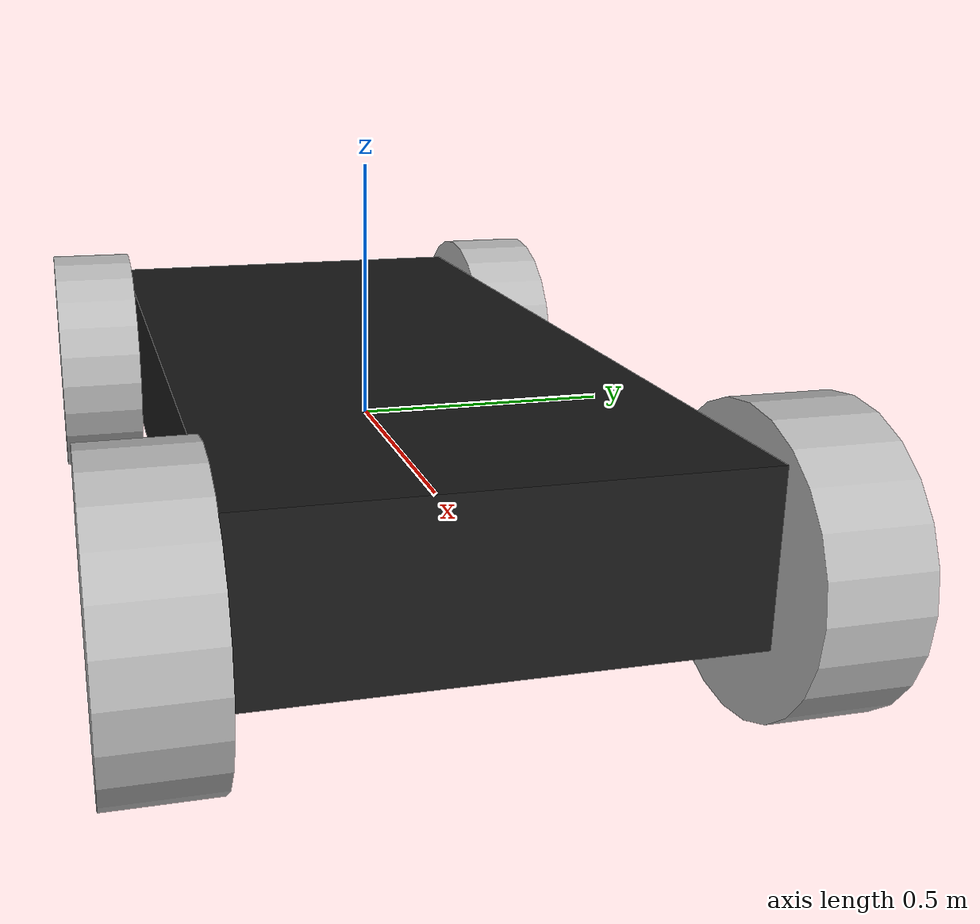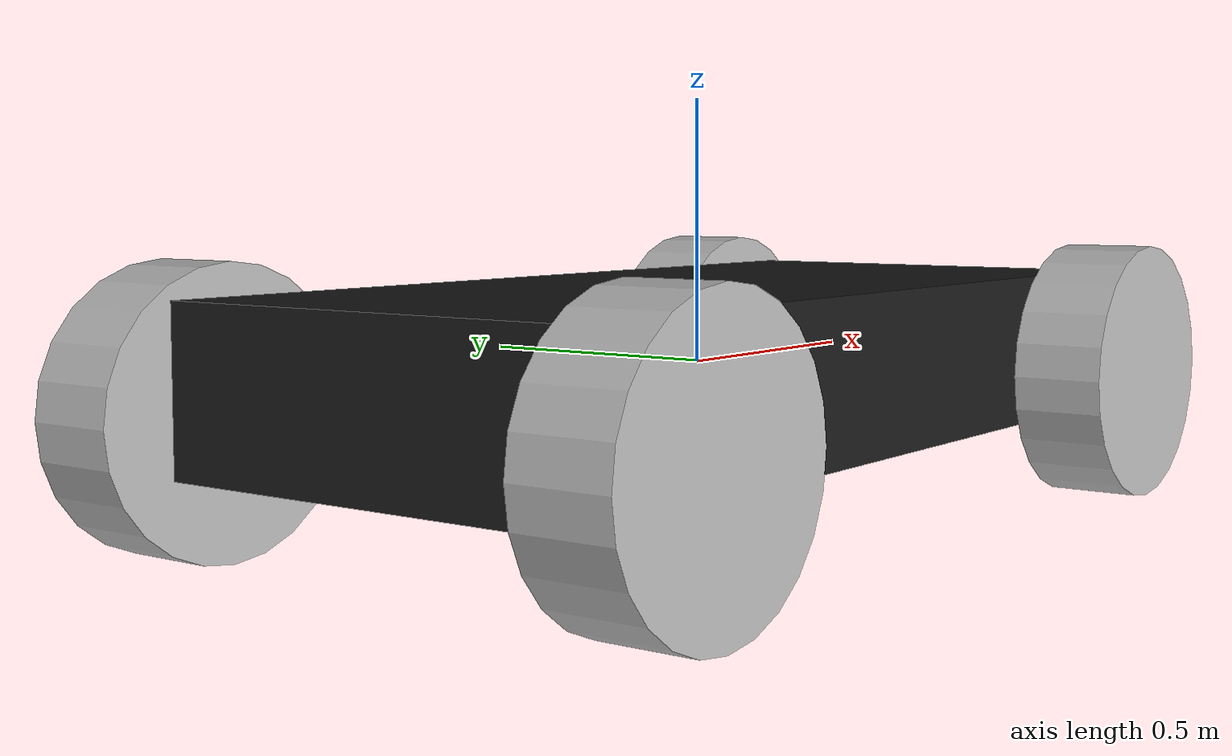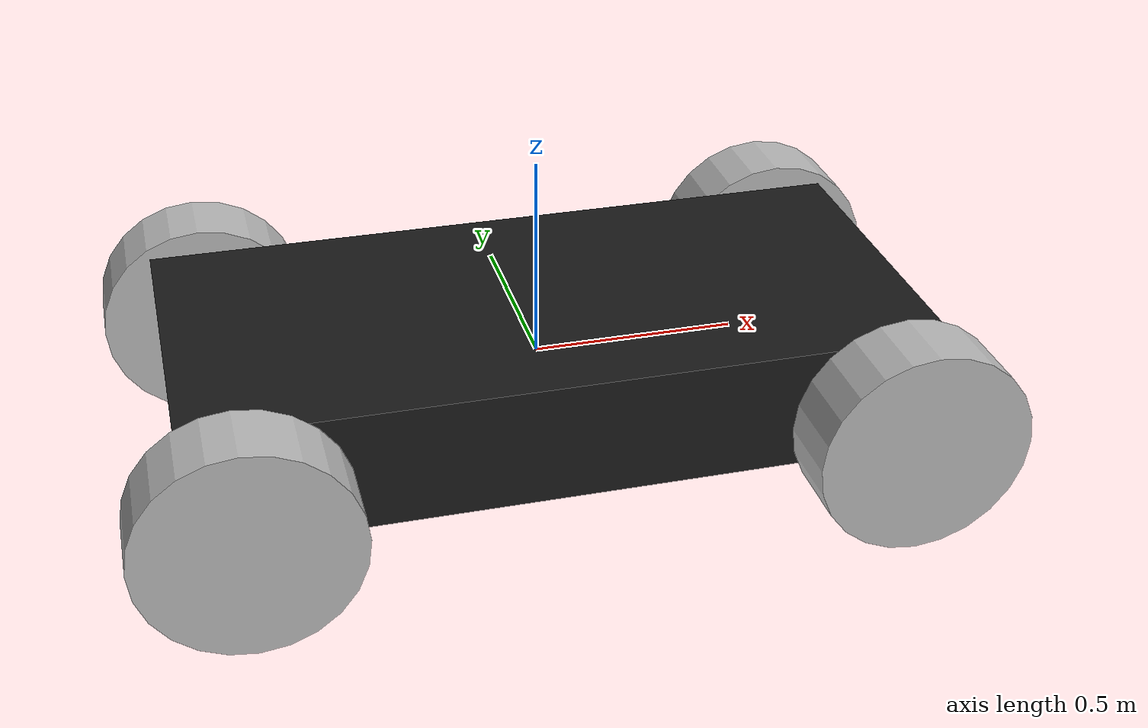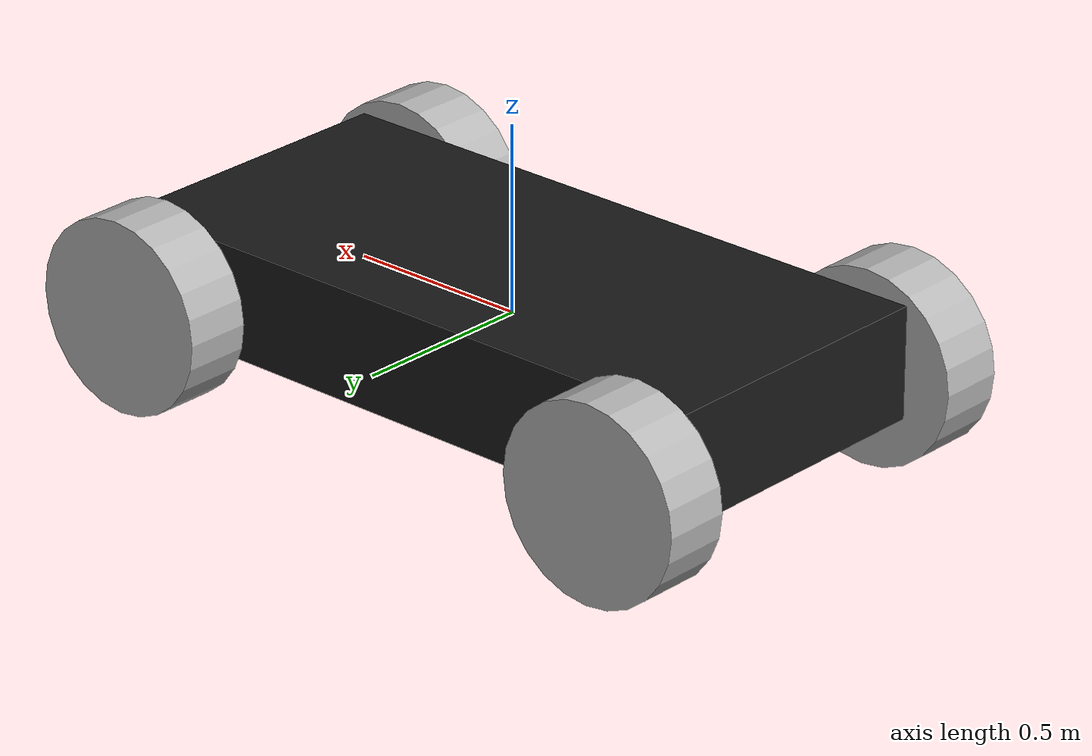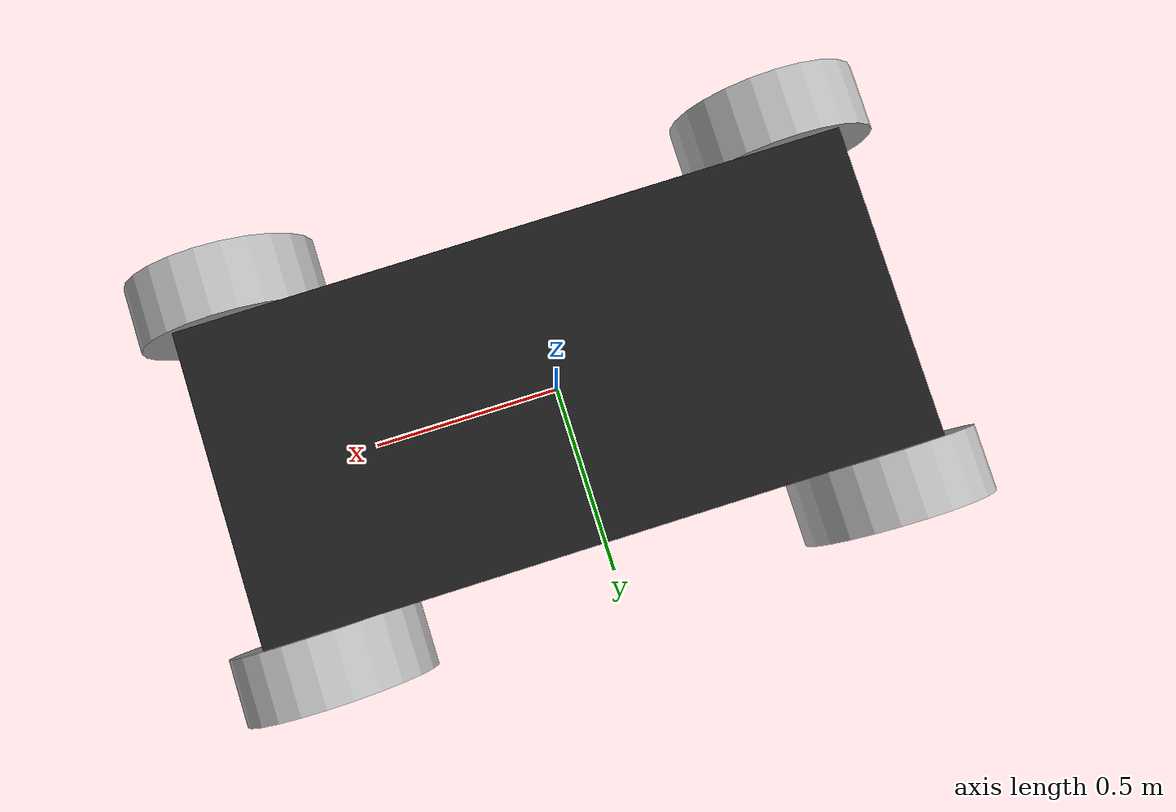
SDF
<?xml version="1.0" ?>
<sdf version="1.10">
  <model name="fsd_car">

    <link name="chassis">
      <inertial>
        <mass>230</mass>           <!-- kg, total vehicle mass (placeholder, FS-typical) -->
        <inertia>
          <ixx>6.52</ixx>          <!-- kg·m², roll -->
          <iyy>63.8</iyy>          <!-- kg·m², pitch -->
          <izz>66.9</izz>          <!-- kg·m², yaw -->
          <ixy>0</ixy>
          <ixz>0</ixz>
          <iyz>0</iyz>
        </inertia>
      </inertial>
      <visual name="chassis_visual">
        <!-- TODO: replace box with a proper mesh once CAD is available -->
        <geometry>
          <box><size>1.8 0.84 0.3</size></box>  <!-- length width height, meters -->
        </geometry>
        <material>
          <ambient>0.1 0.1 0.1 1</ambient>
          <diffuse>0.1 0.1 0.1 1</diffuse>
        </material>
      </visual>
      <collision name="chassis_collision">
        <geometry>
          <box><size>1.8 0.84 0.3</size></box>
        </geometry>
      </collision>

      <sensor name="os1_128" type="gpu_lidar">
        <pose>0.3 0 0.6 0 0 0</pose>
        <update_rate>10</update_rate>
        <lidar>
          <scan>
            <horizontal>
              <samples>1024</samples>
              <min_angle>-3.14159</min_angle>
              <max_angle>3.14159</max_angle>
            </horizontal>
            <vertical>
              <samples>128</samples>
              <min_angle>-0.3927</min_angle>
              <max_angle>0.3927</max_angle>
            </vertical>
          </scan>
          <range>
            <min>0.3</min>
            <max>120.0</max>
          </range>
          <noise>
            <type>gaussian</type>
            <stddev>0.008</stddev>
          </noise>
        </lidar>
        <always_on>true</always_on>
        <visualize>false</visualize>
        <topic>/lidar/points</topic>
      </sensor>

      <sensor name="camera_front" type="camera">
        <pose>0.9 0 1.0 0 0.3 0</pose>  <!-- 1m up, pitched down ~17 deg -->
        <update_rate>30</update_rate>
        <camera>
          <image>
            <width>720</width>
            <height>540</height>
          </image>
          <horizontal_fov>0.7854</horizontal_fov>  <!-- 45 deg -->
        </camera>
        <always_on>true</always_on>
        <visualize>false</visualize>
        <topic>/camera/front/image</topic>
      </sensor>

      <sensor name="camera_left" type="camera">
        <pose>0.9 0 1.0 0 0.3 0.68</pose>  <!-- 1m up, pitched down ~17 deg, yawed ~39 deg left -->
        <update_rate>30</update_rate>
        <camera>
          <image>
            <width>720</width>
            <height>540</height>
          </image>
          <horizontal_fov>0.7854</horizontal_fov>  <!-- 45 deg -->
        </camera>
        <always_on>true</always_on>
        <visualize>false</visualize>
        <topic>/camera/left/image</topic>
      </sensor>

      <sensor name="camera_right" type="camera">
        <pose>0.9 0 1.0 0 0.3 -0.68</pose>  <!-- 1m up, pitched down ~17 deg, yawed ~39 deg right -->
        <update_rate>30</update_rate>
        <camera>
          <image>
            <width>720</width>
            <height>540</height>
          </image>
          <horizontal_fov>0.7854</horizontal_fov>  <!-- 45 deg -->
        </camera>
        <always_on>true</always_on>
        <visualize>false</visualize>
        <topic>/camera/right/image</topic>
      </sensor>

      <sensor name="gnss_front" type="navsat">
        <pose>0.5 0 0.5 0 0 0</pose>  <!-- front antenna, 1m baseline from gnss_rear -->
        <update_rate>400</update_rate>
        <navsat>
          <position_sensing>
            <horizontal><noise type="gaussian"><stddev>1.07e-7</stddev></noise></horizontal>
            <vertical><noise type="gaussian"><stddev>0.02</stddev></noise></vertical>
          </position_sensing>
          <velocity_sensing>
            <horizontal><noise type="gaussian"><stddev>0.05</stddev></noise></horizontal>
            <vertical><noise type="gaussian"><stddev>0.05</stddev></noise></vertical>
          </velocity_sensing>
        </navsat>
        <always_on>true</always_on>
        <visualize>false</visualize>
        <topic>/gnss/front</topic>
      </sensor>

      <sensor name="gnss_rear" type="navsat">
        <pose>-0.5 0 0.5 0 0 0</pose>  <!-- rear antenna, 1m baseline from gnss_front -->
        <update_rate>400</update_rate>
        <navsat>
          <position_sensing>
            <horizontal><noise type="gaussian"><stddev>1.07e-7</stddev></noise></horizontal>
            <vertical><noise type="gaussian"><stddev>0.02</stddev></noise></vertical>
          </position_sensing>
          <velocity_sensing>
            <horizontal><noise type="gaussian"><stddev>0.05</stddev></noise></horizontal>
            <vertical><noise type="gaussian"><stddev>0.05</stddev></noise></vertical>
          </velocity_sensing>
        </navsat>
        <always_on>true</always_on>
        <visualize>false</visualize>
        <topic>/gnss/rear</topic>
      </sensor>

      <sensor name="imu" type="imu">
        <pose>0 0 0.05 0 0 0</pose>  <!-- near CG -->
        <update_rate>400</update_rate>
        <imu>
          <angular_velocity>
            <x><noise type="gaussian"><stddev>0.0012</stddev><bias_stddev>0.000024</bias_stddev></noise></x>
            <y><noise type="gaussian"><stddev>0.0012</stddev><bias_stddev>0.000024</bias_stddev></noise></y>
            <z><noise type="gaussian"><stddev>0.0012</stddev><bias_stddev>0.000024</bias_stddev></noise></z>
          </angular_velocity>
          <linear_acceleration>
            <x><noise type="gaussian"><stddev>0.0275</stddev><bias_stddev>0.00039</bias_stddev></noise></x>
            <y><noise type="gaussian"><stddev>0.0275</stddev><bias_stddev>0.00039</bias_stddev></noise></y>
            <z><noise type="gaussian"><stddev>0.0275</stddev><bias_stddev>0.00039</bias_stddev></noise></z>
          </linear_acceleration>
        </imu>
        <always_on>true</always_on>
        <visualize>false</visualize>
        <topic>/imu</topic>
      </sensor>

    </link> <!-- chassis -->

    <!-- ================================================================
         WHEELS — 4x (AWD, Ackermann front steering)
         ================================================================ -->

    <!-- Front-left -->
    <joint name="front_left_wheel_steering_joint" type="revolute">
      <parent>chassis</parent>
      <child>front_left_steering_knuckle</child>
      <axis>
        <xyz>0 0 1</xyz>
        <limit>
          <lower>-0.332</lower>   <!-- negative of steering_limit, radians -->
          <upper>0.332</upper>    <!-- steering_limit, radians -->
          <effort>1e6</effort>    <!-- DART only enforces position limits under
                                        velocity control if an effort limit is set -->
        </limit>
        <dynamics>
          <damping>0.8</damping>
        </dynamics>
      </axis>
    </joint>

    <link name="front_left_steering_knuckle">
      <pose>0.775 0.51 -0.05 0 0 0</pose>
      <inertial>
        <mass>1</mass>
        <inertia><ixx>0.001</ixx><iyy>0.001</iyy><izz>0.001</izz><ixy>0</ixy><ixz>0</ixz><iyz>0</iyz></inertia>
      </inertial>
    </link>

    <joint name="front_left_wheel_joint" type="revolute">
      <parent>front_left_steering_knuckle</parent>
      <child>front_left_wheel</child>
      <axis><xyz>0 1 0</xyz></axis>
    </joint>

    <link name="front_left_wheel">
      <!-- No additional offset from the steering knuckle; same position. -->
      <pose>0.775 0.51 -0.05 0 0 0</pose>
      <inertial>
        <mass>5</mass>
        <inertia><ixx>0.098</ixx><iyy>0.169</iyy><izz>0.098</izz><ixy>0</ixy><ixz>0</ixz><iyz>0</iyz></inertia>
      </inertial>
      <visual name="visual"><pose>0 0 0 1.570796 0 0</pose><geometry><cylinder><radius>0.26</radius><length>0.18</length></cylinder></geometry></visual>
      <collision name="collision">
        <pose>0 0 0 1.570796 0 0</pose>
        <geometry><cylinder><radius>0.26</radius><length>0.18</length></cylinder></geometry>
        <surface><friction><ode>
          <mu>1.5</mu>    <!-- longitudinal grip -->
          <mu2>1.5</mu2>  <!-- lateral grip -->
          <fdir1>1 0 0</fdir1>
        </ode></friction></surface>
      </collision>
    </link>

    <!-- Front-right (mirror of front-left, y flipped) -->
    <joint name="front_right_wheel_steering_joint" type="revolute">
      <parent>chassis</parent>
      <child>front_right_steering_knuckle</child>
      <axis>
        <xyz>0 0 1</xyz>
        <limit>
          <lower>-0.332</lower>
          <upper>0.332</upper>
          <effort>1e6</effort>
        </limit>
        <dynamics>
          <damping>0.8</damping>
        </dynamics>
      </axis>
    </joint>

    <link name="front_right_steering_knuckle">
      <pose>0.775 -0.51 -0.05 0 0 0</pose>
      <inertial>
        <mass>1</mass>
        <inertia><ixx>0.001</ixx><iyy>0.001</iyy><izz>0.001</izz><ixy>0</ixy><ixz>0</ixz><iyz>0</iyz></inertia>
      </inertial>
    </link>

    <joint name="front_right_wheel_joint" type="revolute">
      <parent>front_right_steering_knuckle</parent>
      <child>front_right_wheel</child>
      <axis><xyz>0 1 0</xyz></axis>
    </joint>

    <link name="front_right_wheel">
      <pose>0.775 -0.51 -0.05 0 0 0</pose>
      <inertial>
        <mass>5</mass>
        <inertia><ixx>0.098</ixx><iyy>0.169</iyy><izz>0.098</izz><ixy>0</ixy><ixz>0</ixz><iyz>0</iyz></inertia>
      </inertial>
      <visual name="visual"><pose>0 0 0 1.570796 0 0</pose><geometry><cylinder><radius>0.26</radius><length>0.18</length></cylinder></geometry></visual>
      <collision name="collision">
        <pose>0 0 0 1.570796 0 0</pose>
        <geometry><cylinder><radius>0.26</radius><length>0.18</length></cylinder></geometry>
        <surface><friction><ode>
          <mu>1.5</mu>
          <mu2>1.5</mu2>
          <fdir1>1 0 0</fdir1>
        </ode></friction></surface>
      </collision>
    </link>

    <joint name="rear_left_wheel_joint" type="revolute">
      <parent>chassis</parent>
      <child>rear_left_wheel</child>
      <axis><xyz>0 1 0</xyz></axis>
    </joint>

    <link name="rear_left_wheel">
      <pose>-0.775 0.51 -0.05 0 0 0</pose>
      <inertial>
        <mass>5</mass>
        <inertia><ixx>0.098</ixx><iyy>0.169</iyy><izz>0.098</izz><ixy>0</ixy><ixz>0</ixz><iyz>0</iyz></inertia>
      </inertial>
      <visual name="visual"><pose>0 0 0 1.570796 0 0</pose><geometry><cylinder><radius>0.26</radius><length>0.18</length></cylinder></geometry></visual>
      <collision name="collision">
        <pose>0 0 0 1.570796 0 0</pose>
        <geometry><cylinder><radius>0.26</radius><length>0.18</length></cylinder></geometry>
        <surface><friction><ode>
          <mu>1.5</mu>
          <mu2>1.5</mu2>
          <fdir1>1 0 0</fdir1>
        </ode></friction></surface>
      </collision>
    </link>

    <joint name="rear_right_wheel_joint" type="revolute">
      <parent>chassis</parent>
      <child>rear_right_wheel</child>
      <axis><xyz>0 1 0</xyz></axis>
    </joint>

    <link name="rear_right_wheel">
      <pose>-0.775 -0.51 -0.05 0 0 0</pose>
      <inertial>
        <mass>5</mass>
        <inertia><ixx>0.098</ixx><iyy>0.169</iyy><izz>0.098</izz><ixy>0</ixy><ixz>0</ixz><iyz>0</iyz></inertia>
      </inertial>
      <visual name="visual"><pose>0 0 0 1.570796 0 0</pose><geometry><cylinder><radius>0.26</radius><length>0.18</length></cylinder></geometry></visual>
      <collision name="collision">
        <pose>0 0 0 1.570796 0 0</pose>
        <geometry><cylinder><radius>0.26</radius><length>0.18</length></cylinder></geometry>
        <surface><friction><ode>
          <mu>1.5</mu>
          <mu2>1.5</mu2>
          <fdir1>1 0 0</fdir1>
        </ode></friction></surface>
      </collision>
    </link>

    <plugin filename="gz-sim-ackermann-steering-system"
            name="gz::sim::systems::AckermannSteering">
      <!-- Driven wheels (AWD: both front and rear) -->
      <left_joint>front_left_wheel_joint</left_joint>
      <left_joint>rear_left_wheel_joint</left_joint>
      <right_joint>front_right_wheel_joint</right_joint>
      <right_joint>rear_right_wheel_joint</right_joint>

      <!-- Steering joints (front axle only) -->
      <left_steering_joint>front_left_wheel_steering_joint</left_steering_joint>
      <right_steering_joint>front_right_wheel_steering_joint</right_steering_joint>

      <kingpin_width>1.02</kingpin_width>       <!-- meters -->
      <wheel_base>1.55</wheel_base>             <!-- meters, front-to-rear axle distance -->
      <wheel_separation>1.02</wheel_separation> <!-- meters, track width -->
      <wheel_radius>0.26</wheel_radius>        <!-- meters -->
      <steering_limit>0.332</steering_limit>   <!-- radians; atan(wheel_base / min_turning_radius),
                                                     here assuming a 4.5m min turning radius -->

      <steer_p_gain>40</steer_p_gain>

      <min_velocity>-5</min_velocity>          <!-- m/s, typically negative for reverse -->
      <max_velocity>20</max_velocity>
      <min_acceleration>-8</min_acceleration>  <!-- m/s² -->
      <max_acceleration>9.81</max_acceleration>   <!-- m/s² (1.0g) -->

      <!-- gz-transport topic the control process publishes commands to -->
      <topic>/cmd_ackermann</topic>
    </plugin>

    <!-- Required: broadcasts joint states so the steering works in simulation -->
    <plugin filename="gz-sim-joint-state-publisher-system"
            name="gz::sim::systems::JointStatePublisher"/>

    <plugin filename="gz-sim-odometry-publisher-system"
            name="gz::sim::systems::OdometryPublisher">
      <dimensions>2</dimensions>
      <odom_frame>fsd_car/ground_speed_odom</odom_frame>
      <robot_base_frame>fsd_car/chassis</robot_base_frame>
      <odom_publish_frequency>1000</odom_publish_frequency>
      <odom_topic>/ground_speed</odom_topic>
      <gaussian_noise>0.02</gaussian_noise>
    </plugin>

  </model>
</sdf>
